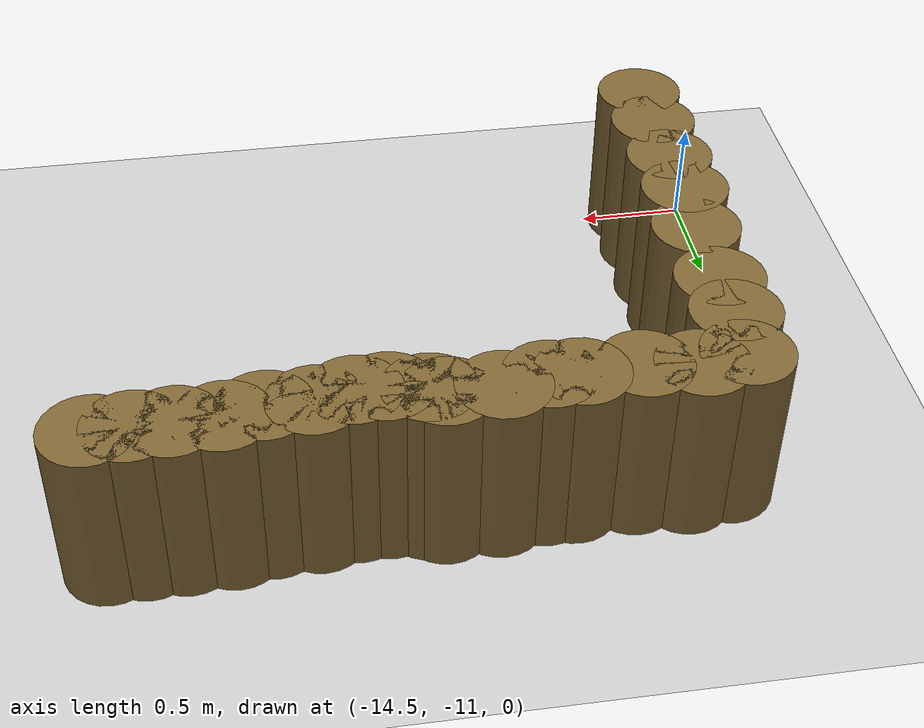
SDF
<sdf version="1.7">
 <world name="default">
  <model name="ground_plane">
   <static>1</static>
   <link name="link">
    <collision name="collision">
     <geometry><plane><normal>0 0 1</normal><size>100 100</size></plane></geometry>
     <surface><friction><ode><mu>100</mu><mu2>50</mu2></ode></friction></surface>
    </collision>
    <visual name="visual">
     <cast_shadows>0</cast_shadows>
     <geometry><plane><normal>0 0 1</normal><size>100 100</size></plane></geometry>
     <material>
      <script><uri>file://media/materials/scripts/gazebo.material</uri><name>Gazebo/Grey</name></script>
     </material>
    </visual>
   </link>
  </model>
  <model name="mini_cylinder_0_clone_0_clone_clone_clone_clone_3_clone_20_clone_138">
   <link name="link">
    <inertial>
     <mass>1</mass>
     <inertia><ixx>0.145833</ixx><ixy>0</ixy><ixz>0</ixz><iyy>0.145833</iyy><iyz>0</iyz><izz>0.125</izz></inertia>
    </inertial>
    <visual name="visual">
     <geometry><cylinder><radius>0.2</radius><length>0.8</length></cylinder></geometry>
     <material>
      <script><name>Gazebo/Grey</name><uri>file://media/materials/scripts/gazebo.material</uri></script>
      <shader type="vertex"><normal_map>__default__</normal_map></shader>
      <ambient>0.5 0.4 0.2 1</ambient>
      <diffuse>0.7 0.7 0.7 1</diffuse>
      <specular>0.01 0.01 0.01 1</specular>
      <emissive>0 0 0 1</emissive>
     </material>
    </visual>
    <collision name="collision">
     <geometry><cylinder><radius>0.2</radius><length>0.8</length></cylinder></geometry>
     <surface>
      <friction>
       <ode><mu>1</mu><mu2>1</mu2><fdir1>0 0 0</fdir1><slip1>0</slip1><slip2>0</slip2></ode>
       <torsional>
        <coefficient>1</coefficient>
        <patch_radius>0</patch_radius>
        <surface_radius>0</surface_radius>
        <use_patch_radius>1</use_patch_radius>
        <ode><slip>0</slip></ode>
       </torsional>
      </friction>
      <bounce><restitution_coefficient>0</restitution_coefficient><threshold>1e+06</threshold></bounce>
      <contact>
       <collide_without_contact>0</collide_without_contact>
       <collide_without_contact_bitmask>1</collide_without_contact_bitmask>
       <collide_bitmask>1</collide_bitmask>
       <ode>
        <soft_cfm>0</soft_cfm>
        <soft_erp>0.2</soft_erp>
        <kp>1e+13</kp>
        <kd>1</kd>
        <max_vel>0.01</max_vel>
        <min_depth>0</min_depth>
       </ode>
       <bullet>
        <split_impulse>1</split_impulse>
        <split_impulse_penetration_threshold>-0.01</split_impulse_penetration_threshold>
        <soft_cfm>0</soft_cfm>
        <soft_erp>0.2</soft_erp>
        <kp>1e+13</kp>
        <kd>1</kd>
       </bullet>
      </contact>
     </surface>
    </collision>
   </link>
   <static>1</static>
   <pose>-11.5602 -8.94384 0.4 0 -0 0</pose>
  </model>
  <model name="mini_cylinder_0_clone_0_clone_clone_clone_clone_3_clone_20_clone_139">
   <link name="link">
    <inertial>
     <mass>1</mass>
     <inertia><ixx>0.145833</ixx><ixy>0</ixy><ixz>0</ixz><iyy>0.145833</iyy><iyz>0</iyz><izz>0.125</izz></inertia>
    </inertial>
    <visual name="visual">
     <geometry><cylinder><radius>0.2</radius><length>0.8</length></cylinder></geometry>
     <material>
      <script><name>Gazebo/Grey</name><uri>file://media/materials/scripts/gazebo.material</uri></script>
      <shader type="vertex"><normal_map>__default__</normal_map></shader>
      <ambient>0.5 0.4 0.2 1</ambient>
      <diffuse>0.7 0.7 0.7 1</diffuse>
      <specular>0.01 0.01 0.01 1</specular>
      <emissive>0 0 0 1</emissive>
     </material>
    </visual>
    <collision name="collision">
     <geometry><cylinder><radius>0.2</radius><length>0.8</length></cylinder></geometry>
     <surface>
      <friction>
       <ode><mu>1</mu><mu2>1</mu2><fdir1>0 0 0</fdir1><slip1>0</slip1><slip2>0</slip2></ode>
       <torsional>
        <coefficient>1</coefficient>
        <patch_radius>0</patch_radius>
        <surface_radius>0</surface_radius>
        <use_patch_radius>1</use_patch_radius>
        <ode><slip>0</slip></ode>
       </torsional>
      </friction>
      <bounce><restitution_coefficient>0</restitution_coefficient><threshold>1e+06</threshold></bounce>
      <contact>
       <collide_without_contact>0</collide_without_contact>
       <collide_without_contact_bitmask>1</collide_without_contact_bitmask>
       <collide_bitmask>1</collide_bitmask>
       <ode>
        <soft_cfm>0</soft_cfm>
        <soft_erp>0.2</soft_erp>
        <kp>1e+13</kp>
        <kd>1</kd>
        <max_vel>0.01</max_vel>
        <min_depth>0</min_depth>
       </ode>
       <bullet>
        <split_impulse>1</split_impulse>
        <split_impulse_penetration_threshold>-0.01</split_impulse_penetration_threshold>
        <soft_cfm>0</soft_cfm>
        <soft_erp>0.2</soft_erp>
        <kp>1e+13</kp>
        <kd>1</kd>
       </bullet>
      </contact>
     </surface>
    </collision>
   </link>
   <static>1</static>
   <pose>-11.7227 -8.9465 0.4 0 -0 0</pose>
  </model>
  <model name="mini_cylinder_0_clone_0_clone_clone_clone_clone_3_clone_20_clone_140">
   <link name="link">
    <inertial>
     <mass>1</mass>
     <inertia><ixx>0.145833</ixx><ixy>0</ixy><ixz>0</ixz><iyy>0.145833</iyy><iyz>0</iyz><izz>0.125</izz></inertia>
    </inertial>
    <visual name="visual">
     <geometry><cylinder><radius>0.2</radius><length>0.8</length></cylinder></geometry>
     <material>
      <script><name>Gazebo/Grey</name><uri>file://media/materials/scripts/gazebo.material</uri></script>
      <shader type="vertex"><normal_map>__default__</normal_map></shader>
      <ambient>0.5 0.4 0.2 1</ambient>
      <diffuse>0.7 0.7 0.7 1</diffuse>
      <specular>0.01 0.01 0.01 1</specular>
      <emissive>0 0 0 1</emissive>
     </material>
    </visual>
    <collision name="collision">
     <geometry><cylinder><radius>0.2</radius><length>0.8</length></cylinder></geometry>
     <surface>
      <friction>
       <ode><mu>1</mu><mu2>1</mu2><fdir1>0 0 0</fdir1><slip1>0</slip1><slip2>0</slip2></ode>
       <torsional>
        <coefficient>1</coefficient>
        <patch_radius>0</patch_radius>
        <surface_radius>0</surface_radius>
        <use_patch_radius>1</use_patch_radius>
        <ode><slip>0</slip></ode>
       </torsional>
      </friction>
      <bounce><restitution_coefficient>0</restitution_coefficient><threshold>1e+06</threshold></bounce>
      <contact>
       <collide_without_contact>0</collide_without_contact>
       <collide_without_contact_bitmask>1</collide_without_contact_bitmask>
       <collide_bitmask>1</collide_bitmask>
       <ode>
        <soft_cfm>0</soft_cfm>
        <soft_erp>0.2</soft_erp>
        <kp>1e+13</kp>
        <kd>1</kd>
        <max_vel>0.01</max_vel>
        <min_depth>0</min_depth>
       </ode>
       <bullet>
        <split_impulse>1</split_impulse>
        <split_impulse_penetration_threshold>-0.01</split_impulse_penetration_threshold>
        <soft_cfm>0</soft_cfm>
        <soft_erp>0.2</soft_erp>
        <kp>1e+13</kp>
        <kd>1</kd>
       </bullet>
      </contact>
     </surface>
    </collision>
   </link>
   <static>1</static>
   <pose>-11.8853 -8.94828 0.4 0 -0 0</pose>
  </model>
  <model name="mini_cylinder_0_clone_0_clone_clone_clone_clone_3_clone_20_clone_141">
   <link name="link">
    <inertial>
     <mass>1</mass>
     <inertia><ixx>0.145833</ixx><ixy>0</ixy><ixz>0</ixz><iyy>0.145833</iyy><iyz>0</iyz><izz>0.125</izz></inertia>
    </inertial>
    <visual name="visual">
     <geometry><cylinder><radius>0.2</radius><length>0.8</length></cylinder></geometry>
     <material>
      <script><name>Gazebo/Grey</name><uri>file://media/materials/scripts/gazebo.material</uri></script>
      <shader type="vertex"><normal_map>__default__</normal_map></shader>
      <ambient>0.5 0.4 0.2 1</ambient>
      <diffuse>0.7 0.7 0.7 1</diffuse>
      <specular>0.01 0.01 0.01 1</specular>
      <emissive>0 0 0 1</emissive>
     </material>
    </visual>
    <collision name="collision">
     <geometry><cylinder><radius>0.2</radius><length>0.8</length></cylinder></geometry>
     <surface>
      <friction>
       <ode><mu>1</mu><mu2>1</mu2><fdir1>0 0 0</fdir1><slip1>0</slip1><slip2>0</slip2></ode>
       <torsional>
        <coefficient>1</coefficient>
        <patch_radius>0</patch_radius>
        <surface_radius>0</surface_radius>
        <use_patch_radius>1</use_patch_radius>
        <ode><slip>0</slip></ode>
       </torsional>
      </friction>
      <bounce><restitution_coefficient>0</restitution_coefficient><threshold>1e+06</threshold></bounce>
      <contact>
       <collide_without_contact>0</collide_without_contact>
       <collide_without_contact_bitmask>1</collide_without_contact_bitmask>
       <collide_bitmask>1</collide_bitmask>
       <ode>
        <soft_cfm>0</soft_cfm>
        <soft_erp>0.2</soft_erp>
        <kp>1e+13</kp>
        <kd>1</kd>
        <max_vel>0.01</max_vel>
        <min_depth>0</min_depth>
       </ode>
       <bullet>
        <split_impulse>1</split_impulse>
        <split_impulse_penetration_threshold>-0.01</split_impulse_penetration_threshold>
        <soft_cfm>0</soft_cfm>
        <soft_erp>0.2</soft_erp>
        <kp>1e+13</kp>
        <kd>1</kd>
       </bullet>
      </contact>
     </surface>
    </collision>
   </link>
   <static>1</static>
   <pose>-12.0801 -8.95148 0.4 0 -0 0</pose>
  </model>
  <model name="mini_cylinder_0_clone_0_clone_clone_clone_clone_3_clone_20_clone_142">
   <link name="link">
    <inertial>
     <mass>1</mass>
     <inertia><ixx>0.145833</ixx><ixy>0</ixy><ixz>0</ixz><iyy>0.145833</iyy><iyz>0</iyz><izz>0.125</izz></inertia>
    </inertial>
    <visual name="visual">
     <geometry><cylinder><radius>0.2</radius><length>0.8</length></cylinder></geometry>
     <material>
      <script><name>Gazebo/Grey</name><uri>file://media/materials/scripts/gazebo.material</uri></script>
      <shader type="vertex"><normal_map>__default__</normal_map></shader>
      <ambient>0.5 0.4 0.2 1</ambient>
      <diffuse>0.7 0.7 0.7 1</diffuse>
      <specular>0.01 0.01 0.01 1</specular>
      <emissive>0 0 0 1</emissive>
     </material>
    </visual>
    <collision name="collision">
     <geometry><cylinder><radius>0.2</radius><length>0.8</length></cylinder></geometry>
     <surface>
      <friction>
       <ode><mu>1</mu><mu2>1</mu2><fdir1>0 0 0</fdir1><slip1>0</slip1><slip2>0</slip2></ode>
       <torsional>
        <coefficient>1</coefficient>
        <patch_radius>0</patch_radius>
        <surface_radius>0</surface_radius>
        <use_patch_radius>1</use_patch_radius>
        <ode><slip>0</slip></ode>
       </torsional>
      </friction>
      <bounce><restitution_coefficient>0</restitution_coefficient><threshold>1e+06</threshold></bounce>
      <contact>
       <collide_without_contact>0</collide_without_contact>
       <collide_without_contact_bitmask>1</collide_without_contact_bitmask>
       <collide_bitmask>1</collide_bitmask>
       <ode>
        <soft_cfm>0</soft_cfm>
        <soft_erp>0.2</soft_erp>
        <kp>1e+13</kp>
        <kd>1</kd>
        <max_vel>0.01</max_vel>
        <min_depth>0</min_depth>
       </ode>
       <bullet>
        <split_impulse>1</split_impulse>
        <split_impulse_penetration_threshold>-0.01</split_impulse_penetration_threshold>
        <soft_cfm>0</soft_cfm>
        <soft_erp>0.2</soft_erp>
        <kp>1e+13</kp>
        <kd>1</kd>
       </bullet>
      </contact>
     </surface>
    </collision>
   </link>
   <static>1</static>
   <pose>-12.2414 -8.98664 0.4 0 -0 0</pose>
  </model>
  <model name="mini_cylinder_0_clone_0_clone_clone_clone_clone_3_clone_20_clone_143">
   <link name="link">
    <inertial>
     <mass>1</mass>
     <inertia><ixx>0.145833</ixx><ixy>0</ixy><ixz>0</ixz><iyy>0.145833</iyy><iyz>0</iyz><izz>0.125</izz></inertia>
    </inertial>
    <visual name="visual">
     <geometry><cylinder><radius>0.2</radius><length>0.8</length></cylinder></geometry>
     <material>
      <script><name>Gazebo/Grey</name><uri>file://media/materials/scripts/gazebo.material</uri></script>
      <shader type="vertex"><normal_map>__default__</normal_map></shader>
      <ambient>0.5 0.4 0.2 1</ambient>
      <diffuse>0.7 0.7 0.7 1</diffuse>
      <specular>0.01 0.01 0.01 1</specular>
      <emissive>0 0 0 1</emissive>
     </material>
    </visual>
    <collision name="collision">
     <geometry><cylinder><radius>0.2</radius><length>0.8</length></cylinder></geometry>
     <surface>
      <friction>
       <ode><mu>1</mu><mu2>1</mu2><fdir1>0 0 0</fdir1><slip1>0</slip1><slip2>0</slip2></ode>
       <torsional>
        <coefficient>1</coefficient>
        <patch_radius>0</patch_radius>
        <surface_radius>0</surface_radius>
        <use_patch_radius>1</use_patch_radius>
        <ode><slip>0</slip></ode>
       </torsional>
      </friction>
      <bounce><restitution_coefficient>0</restitution_coefficient><threshold>1e+06</threshold></bounce>
      <contact>
       <collide_without_contact>0</collide_without_contact>
       <collide_without_contact_bitmask>1</collide_without_contact_bitmask>
       <collide_bitmask>1</collide_bitmask>
       <ode>
        <soft_cfm>0</soft_cfm>
        <soft_erp>0.2</soft_erp>
        <kp>1e+13</kp>
        <kd>1</kd>
        <max_vel>0.01</max_vel>
        <min_depth>0</min_depth>
       </ode>
       <bullet>
        <split_impulse>1</split_impulse>
        <split_impulse_penetration_threshold>-0.01</split_impulse_penetration_threshold>
        <soft_cfm>0</soft_cfm>
        <soft_erp>0.2</soft_erp>
        <kp>1e+13</kp>
        <kd>1</kd>
       </bullet>
      </contact>
     </surface>
    </collision>
   </link>
   <static>1</static>
   <pose>-12.4361 -8.98979 0.4 0 -0 0</pose>
  </model>
  <model name="mini_cylinder_0_clone_0_clone_clone_clone_clone_3_clone_20_clone_144">
   <link name="link">
    <inertial>
     <mass>1</mass>
     <inertia><ixx>0.145833</ixx><ixy>0</ixy><ixz>0</ixz><iyy>0.145833</iyy><iyz>0</iyz><izz>0.125</izz></inertia>
    </inertial>
    <visual name="visual">
     <geometry><cylinder><radius>0.2</radius><length>0.8</length></cylinder></geometry>
     <material>
      <script><name>Gazebo/Grey</name><uri>file://media/materials/scripts/gazebo.material</uri></script>
      <shader type="vertex"><normal_map>__default__</normal_map></shader>
      <ambient>0.5 0.4 0.2 1</ambient>
      <diffuse>0.7 0.7 0.7 1</diffuse>
      <specular>0.01 0.01 0.01 1</specular>
      <emissive>0 0 0 1</emissive>
     </material>
    </visual>
    <collision name="collision">
     <geometry><cylinder><radius>0.2</radius><length>0.8</length></cylinder></geometry>
     <surface>
      <friction>
       <ode><mu>1</mu><mu2>1</mu2><fdir1>0 0 0</fdir1><slip1>0</slip1><slip2>0</slip2></ode>
       <torsional>
        <coefficient>1</coefficient>
        <patch_radius>0</patch_radius>
        <surface_radius>0</surface_radius>
        <use_patch_radius>1</use_patch_radius>
        <ode><slip>0</slip></ode>
       </torsional>
      </friction>
      <bounce><restitution_coefficient>0</restitution_coefficient><threshold>1e+06</threshold></bounce>
      <contact>
       <collide_without_contact>0</collide_without_contact>
       <collide_without_contact_bitmask>1</collide_without_contact_bitmask>
       <collide_bitmask>1</collide_bitmask>
       <ode>
        <soft_cfm>0</soft_cfm>
        <soft_erp>0.2</soft_erp>
        <kp>1e+13</kp>
        <kd>1</kd>
        <max_vel>0.01</max_vel>
        <min_depth>0</min_depth>
       </ode>
       <bullet>
        <split_impulse>1</split_impulse>
        <split_impulse_penetration_threshold>-0.01</split_impulse_penetration_threshold>
        <soft_cfm>0</soft_cfm>
        <soft_erp>0.2</soft_erp>
        <kp>1e+13</kp>
        <kd>1</kd>
       </bullet>
      </contact>
     </surface>
    </collision>
   </link>
   <static>1</static>
   <pose>-12.5977 -9.02465 0.4 0 -0 0</pose>
  </model>
  <model name="mini_cylinder_0_clone_0_clone_clone_clone_clone_3_clone_20_clone_145">
   <link name="link">
    <inertial>
     <mass>1</mass>
     <inertia><ixx>0.145833</ixx><ixy>0</ixy><ixz>0</ixz><iyy>0.145833</iyy><iyz>0</iyz><izz>0.125</izz></inertia>
    </inertial>
    <visual name="visual">
     <geometry><cylinder><radius>0.2</radius><length>0.8</length></cylinder></geometry>
     <material>
      <script><name>Gazebo/Grey</name><uri>file://media/materials/scripts/gazebo.material</uri></script>
      <shader type="vertex"><normal_map>__default__</normal_map></shader>
      <ambient>0.5 0.4 0.2 1</ambient>
      <diffuse>0.7 0.7 0.7 1</diffuse>
      <specular>0.01 0.01 0.01 1</specular>
      <emissive>0 0 0 1</emissive>
     </material>
    </visual>
    <collision name="collision">
     <geometry><cylinder><radius>0.2</radius><length>0.8</length></cylinder></geometry>
     <surface>
      <friction>
       <ode><mu>1</mu><mu2>1</mu2><fdir1>0 0 0</fdir1><slip1>0</slip1><slip2>0</slip2></ode>
       <torsional>
        <coefficient>1</coefficient>
        <patch_radius>0</patch_radius>
        <surface_radius>0</surface_radius>
        <use_patch_radius>1</use_patch_radius>
        <ode><slip>0</slip></ode>
       </torsional>
      </friction>
      <bounce><restitution_coefficient>0</restitution_coefficient><threshold>1e+06</threshold></bounce>
      <contact>
       <collide_without_contact>0</collide_without_contact>
       <collide_without_contact_bitmask>1</collide_without_contact_bitmask>
       <collide_bitmask>1</collide_bitmask>
       <ode>
        <soft_cfm>0</soft_cfm>
        <soft_erp>0.2</soft_erp>
        <kp>1e+13</kp>
        <kd>1</kd>
        <max_vel>0.01</max_vel>
        <min_depth>0</min_depth>
       </ode>
       <bullet>
        <split_impulse>1</split_impulse>
        <split_impulse_penetration_threshold>-0.01</split_impulse_penetration_threshold>
        <soft_cfm>0</soft_cfm>
        <soft_erp>0.2</soft_erp>
        <kp>1e+13</kp>
        <kd>1</kd>
       </bullet>
      </contact>
     </surface>
    </collision>
   </link>
   <static>1</static>
   <pose>-12.7285 -9.02677 0.4 0 -0 0</pose>
  </model>
  <model name="mini_cylinder_0_clone_0_clone_clone_clone_clone_3_clone_20_clone_146">
   <link name="link">
    <inertial>
     <mass>1</mass>
     <inertia><ixx>0.145833</ixx><ixy>0</ixy><ixz>0</ixz><iyy>0.145833</iyy><iyz>0</iyz><izz>0.125</izz></inertia>
    </inertial>
    <visual name="visual">
     <geometry><cylinder><radius>0.2</radius><length>0.8</length></cylinder></geometry>
     <material>
      <script><name>Gazebo/Grey</name><uri>file://media/materials/scripts/gazebo.material</uri></script>
      <shader type="vertex"><normal_map>__default__</normal_map></shader>
      <ambient>0.5 0.4 0.2 1</ambient>
      <diffuse>0.7 0.7 0.7 1</diffuse>
      <specular>0.01 0.01 0.01 1</specular>
      <emissive>0 0 0 1</emissive>
     </material>
    </visual>
    <collision name="collision">
     <geometry><cylinder><radius>0.2</radius><length>0.8</length></cylinder></geometry>
     <surface>
      <friction>
       <ode><mu>1</mu><mu2>1</mu2><fdir1>0 0 0</fdir1><slip1>0</slip1><slip2>0</slip2></ode>
       <torsional>
        <coefficient>1</coefficient>
        <patch_radius>0</patch_radius>
        <surface_radius>0</surface_radius>
        <use_patch_radius>1</use_patch_radius>
        <ode><slip>0</slip></ode>
       </torsional>
      </friction>
      <bounce><restitution_coefficient>0</restitution_coefficient><threshold>1e+06</threshold></bounce>
      <contact>
       <collide_without_contact>0</collide_without_contact>
       <collide_without_contact_bitmask>1</collide_without_contact_bitmask>
       <collide_bitmask>1</collide_bitmask>
       <ode>
        <soft_cfm>0</soft_cfm>
        <soft_erp>0.2</soft_erp>
        <kp>1e+13</kp>
        <kd>1</kd>
        <max_vel>0.01</max_vel>
        <min_depth>0</min_depth>
       </ode>
       <bullet>
        <split_impulse>1</split_impulse>
        <split_impulse_penetration_threshold>-0.01</split_impulse_penetration_threshold>
        <soft_cfm>0</soft_cfm>
        <soft_erp>0.2</soft_erp>
        <kp>1e+13</kp>
        <kd>1</kd>
       </bullet>
      </contact>
     </surface>
    </collision>
   </link>
   <static>1</static>
   <pose>-12.891 -8.99663 0.4 0 -0 0</pose>
  </model>
  <model name="mini_cylinder_0_clone_0_clone_clone_clone_clone_3_clone_20_clone_147">
   <link name="link">
    <inertial>
     <mass>1</mass>
     <inertia><ixx>0.145833</ixx><ixy>0</ixy><ixz>0</ixz><iyy>0.145833</iyy><iyz>0</iyz><izz>0.125</izz></inertia>
    </inertial>
    <visual name="visual">
     <geometry><cylinder><radius>0.2</radius><length>0.8</length></cylinder></geometry>
     <material>
      <script><name>Gazebo/Grey</name><uri>file://media/materials/scripts/gazebo.material</uri></script>
      <shader type="vertex"><normal_map>__default__</normal_map></shader>
      <ambient>0.5 0.4 0.2 1</ambient>
      <diffuse>0.7 0.7 0.7 1</diffuse>
      <specular>0.01 0.01 0.01 1</specular>
      <emissive>0 0 0 1</emissive>
     </material>
    </visual>
    <collision name="collision">
     <geometry><cylinder><radius>0.2</radius><length>0.8</length></cylinder></geometry>
     <surface>
      <friction>
       <ode><mu>1</mu><mu2>1</mu2><fdir1>0 0 0</fdir1><slip1>0</slip1><slip2>0</slip2></ode>
       <torsional>
        <coefficient>1</coefficient>
        <patch_radius>0</patch_radius>
        <surface_radius>0</surface_radius>
        <use_patch_radius>1</use_patch_radius>
        <ode><slip>0</slip></ode>
       </torsional>
      </friction>
      <bounce><restitution_coefficient>0</restitution_coefficient><threshold>1e+06</threshold></bounce>
      <contact>
       <collide_without_contact>0</collide_without_contact>
       <collide_without_contact_bitmask>1</collide_without_contact_bitmask>
       <collide_bitmask>1</collide_bitmask>
       <ode>
        <soft_cfm>0</soft_cfm>
        <soft_erp>0.2</soft_erp>
        <kp>1e+13</kp>
        <kd>1</kd>
        <max_vel>0.01</max_vel>
        <min_depth>0</min_depth>
       </ode>
       <bullet>
        <split_impulse>1</split_impulse>
        <split_impulse_penetration_threshold>-0.01</split_impulse_penetration_threshold>
        <soft_cfm>0</soft_cfm>
        <soft_erp>0.2</soft_erp>
        <kp>1e+13</kp>
        <kd>1</kd>
       </bullet>
      </contact>
     </surface>
    </collision>
   </link>
   <static>1</static>
   <pose>-13.1835 -8.96915 0.4 0 -0 0</pose>
  </model>
  <model name="mini_cylinder_0_clone_0_clone_clone_clone_clone_3_clone_20_clone_148">
   <link name="link">
    <inertial>
     <mass>1</mass>
     <inertia><ixx>0.145833</ixx><ixy>0</ixy><ixz>0</ixz><iyy>0.145833</iyy><iyz>0</iyz><izz>0.125</izz></inertia>
    </inertial>
    <visual name="visual">
     <geometry><cylinder><radius>0.2</radius><length>0.8</length></cylinder></geometry>
     <material>
      <script><name>Gazebo/Grey</name><uri>file://media/materials/scripts/gazebo.material</uri></script>
      <shader type="vertex"><normal_map>__default__</normal_map></shader>
      <ambient>0.5 0.4 0.2 1</ambient>
      <diffuse>0.7 0.7 0.7 1</diffuse>
      <specular>0.01 0.01 0.01 1</specular>
      <emissive>0 0 0 1</emissive>
     </material>
    </visual>
    <collision name="collision">
     <geometry><cylinder><radius>0.2</radius><length>0.8</length></cylinder></geometry>
     <surface>
      <friction>
       <ode><mu>1</mu><mu2>1</mu2><fdir1>0 0 0</fdir1><slip1>0</slip1><slip2>0</slip2></ode>
       <torsional>
        <coefficient>1</coefficient>
        <patch_radius>0</patch_radius>
        <surface_radius>0</surface_radius>
        <use_patch_radius>1</use_patch_radius>
        <ode><slip>0</slip></ode>
       </torsional>
      </friction>
      <bounce><restitution_coefficient>0</restitution_coefficient><threshold>1e+06</threshold></bounce>
      <contact>
       <collide_without_contact>0</collide_without_contact>
       <collide_without_contact_bitmask>1</collide_without_contact_bitmask>
       <collide_bitmask>1</collide_bitmask>
       <ode>
        <soft_cfm>0</soft_cfm>
        <soft_erp>0.2</soft_erp>
        <kp>1e+13</kp>
        <kd>1</kd>
        <max_vel>0.01</max_vel>
        <min_depth>0</min_depth>
       </ode>
       <bullet>
        <split_impulse>1</split_impulse>
        <split_impulse_penetration_threshold>-0.01</split_impulse_penetration_threshold>
        <soft_cfm>0</soft_cfm>
        <soft_erp>0.2</soft_erp>
        <kp>1e+13</kp>
        <kd>1</kd>
       </bullet>
      </contact>
     </surface>
    </collision>
   </link>
   <static>1</static>
   <pose>-13.3777 -9.00397 0.4 0 -0 0</pose>
  </model>
  <model name="mini_cylinder_0_clone_0_clone_clone_clone_clone_3_clone_20_clone_149">
   <link name="link">
    <inertial>
     <mass>1</mass>
     <inertia><ixx>0.145833</ixx><ixy>0</ixy><ixz>0</ixz><iyy>0.145833</iyy><iyz>0</iyz><izz>0.125</izz></inertia>
    </inertial>
    <visual name="visual">
     <geometry><cylinder><radius>0.2</radius><length>0.8</length></cylinder></geometry>
     <material>
      <script><name>Gazebo/Grey</name><uri>file://media/materials/scripts/gazebo.material</uri></script>
      <shader type="vertex"><normal_map>__default__</normal_map></shader>
      <ambient>0.5 0.4 0.2 1</ambient>
      <diffuse>0.7 0.7 0.7 1</diffuse>
      <specular>0.01 0.01 0.01 1</specular>
      <emissive>0 0 0 1</emissive>
     </material>
    </visual>
    <collision name="collision">
     <geometry><cylinder><radius>0.2</radius><length>0.8</length></cylinder></geometry>
     <surface>
      <friction>
       <ode><mu>1</mu><mu2>1</mu2><fdir1>0 0 0</fdir1><slip1>0</slip1><slip2>0</slip2></ode>
       <torsional>
        <coefficient>1</coefficient>
        <patch_radius>0</patch_radius>
        <surface_radius>0</surface_radius>
        <use_patch_radius>1</use_patch_radius>
        <ode><slip>0</slip></ode>
       </torsional>
      </friction>
      <bounce><restitution_coefficient>0</restitution_coefficient><threshold>1e+06</threshold></bounce>
      <contact>
       <collide_without_contact>0</collide_without_contact>
       <collide_without_contact_bitmask>1</collide_without_contact_bitmask>
       <collide_bitmask>1</collide_bitmask>
       <ode>
        <soft_cfm>0</soft_cfm>
        <soft_erp>0.2</soft_erp>
        <kp>1e+13</kp>
        <kd>1</kd>
        <max_vel>0.01</max_vel>
        <min_depth>0</min_depth>
       </ode>
       <bullet>
        <split_impulse>1</split_impulse>
        <split_impulse_penetration_threshold>-0.01</split_impulse_penetration_threshold>
        <soft_cfm>0</soft_cfm>
        <soft_erp>0.2</soft_erp>
        <kp>1e+13</kp>
        <kd>1</kd>
       </bullet>
      </contact>
     </surface>
    </collision>
   </link>
   <static>1</static>
   <pose>-12.956 -8.96531 0.4 0 -0 0</pose>
  </model>
  <model name="mini_cylinder_0_clone_0_clone_clone_clone_clone_3_clone_20_clone_150">
   <link name="link">
    <inertial>
     <mass>1</mass>
     <inertia><ixx>0.145833</ixx><ixy>0</ixy><ixz>0</ixz><iyy>0.145833</iyy><iyz>0</iyz><izz>0.125</izz></inertia>
    </inertial>
    <visual name="visual">
     <geometry><cylinder><radius>0.2</radius><length>0.8</length></cylinder></geometry>
     <material>
      <script><name>Gazebo/Grey</name><uri>file://media/materials/scripts/gazebo.material</uri></script>
      <shader type="vertex"><normal_map>__default__</normal_map></shader>
      <ambient>0.5 0.4 0.2 1</ambient>
      <diffuse>0.7 0.7 0.7 1</diffuse>
      <specular>0.01 0.01 0.01 1</specular>
      <emissive>0 0 0 1</emissive>
     </material>
    </visual>
    <collision name="collision">
     <geometry><cylinder><radius>0.2</radius><length>0.8</length></cylinder></geometry>
     <surface>
      <friction>
       <ode><mu>1</mu><mu2>1</mu2><fdir1>0 0 0</fdir1><slip1>0</slip1><slip2>0</slip2></ode>
       <torsional>
        <coefficient>1</coefficient>
        <patch_radius>0</patch_radius>
        <surface_radius>0</surface_radius>
        <use_patch_radius>1</use_patch_radius>
        <ode><slip>0</slip></ode>
       </torsional>
      </friction>
      <bounce><restitution_coefficient>0</restitution_coefficient><threshold>1e+06</threshold></bounce>
      <contact>
       <collide_without_contact>0</collide_without_contact>
       <collide_without_contact_bitmask>1</collide_without_contact_bitmask>
       <collide_bitmask>1</collide_bitmask>
       <ode>
        <soft_cfm>0</soft_cfm>
        <soft_erp>0.2</soft_erp>
        <kp>1e+13</kp>
        <kd>1</kd>
        <max_vel>0.01</max_vel>
        <min_depth>0</min_depth>
       </ode>
       <bullet>
        <split_impulse>1</split_impulse>
        <split_impulse_penetration_threshold>-0.01</split_impulse_penetration_threshold>
        <soft_cfm>0</soft_cfm>
        <soft_erp>0.2</soft_erp>
        <kp>1e+13</kp>
        <kd>1</kd>
       </bullet>
      </contact>
     </surface>
    </collision>
   </link>
   <static>1</static>
   <pose>-13.5071 -9 0.4 0 -0 0</pose>
  </model>
  <model name="mini_cylinder_0_clone_0_clone_clone_clone_clone_3_clone_20_clone_151">
   <link name="link">
    <inertial>
     <mass>1</mass>
     <inertia><ixx>0.145833</ixx><ixy>0</ixy><ixz>0</ixz><iyy>0.145833</iyy><iyz>0</iyz><izz>0.125</izz></inertia>
    </inertial>
    <visual name="visual">
     <geometry><cylinder><radius>0.2</radius><length>0.8</length></cylinder></geometry>
     <material>
      <script><name>Gazebo/Grey</name><uri>file://media/materials/scripts/gazebo.material</uri></script>
      <shader type="vertex"><normal_map>__default__</normal_map></shader>
      <ambient>0.5 0.4 0.2 1</ambient>
      <diffuse>0.7 0.7 0.7 1</diffuse>
      <specular>0.01 0.01 0.01 1</specular>
      <emissive>0 0 0 1</emissive>
     </material>
    </visual>
    <collision name="collision">
     <geometry><cylinder><radius>0.2</radius><length>0.8</length></cylinder></geometry>
     <surface>
      <friction>
       <ode><mu>1</mu><mu2>1</mu2><fdir1>0 0 0</fdir1><slip1>0</slip1><slip2>0</slip2></ode>
       <torsional>
        <coefficient>1</coefficient>
        <patch_radius>0</patch_radius>
        <surface_radius>0</surface_radius>
        <use_patch_radius>1</use_patch_radius>
        <ode><slip>0</slip></ode>
       </torsional>
      </friction>
      <bounce><restitution_coefficient>0</restitution_coefficient><threshold>1e+06</threshold></bounce>
      <contact>
       <collide_without_contact>0</collide_without_contact>
       <collide_without_contact_bitmask>1</collide_without_contact_bitmask>
       <collide_bitmask>1</collide_bitmask>
       <ode>
        <soft_cfm>0</soft_cfm>
        <soft_erp>0.2</soft_erp>
        <kp>1e+13</kp>
        <kd>1</kd>
        <max_vel>0.01</max_vel>
        <min_depth>0</min_depth>
       </ode>
       <bullet>
        <split_impulse>1</split_impulse>
        <split_impulse_penetration_threshold>-0.01</split_impulse_penetration_threshold>
        <soft_cfm>0</soft_cfm>
        <soft_erp>0.2</soft_erp>
        <kp>1e+13</kp>
        <kd>1</kd>
       </bullet>
      </contact>
     </surface>
    </collision>
   </link>
   <static>1</static>
   <pose>-13.7666 -9.01036 0.4 0 -0 0</pose>
  </model>
  <model name="mini_cylinder_0_clone_0_clone_clone_clone_clone_3_clone_20_clone_152">
   <link name="link">
    <inertial>
     <mass>1</mass>
     <inertia><ixx>0.145833</ixx><ixy>0</ixy><ixz>0</ixz><iyy>0.145833</iyy><iyz>0</iyz><izz>0.125</izz></inertia>
    </inertial>
    <visual name="visual">
     <geometry><cylinder><radius>0.2</radius><length>0.8</length></cylinder></geometry>
     <material>
      <script><name>Gazebo/Grey</name><uri>file://media/materials/scripts/gazebo.material</uri></script>
      <shader type="vertex"><normal_map>__default__</normal_map></shader>
      <ambient>0.5 0.4 0.2 1</ambient>
      <diffuse>0.7 0.7 0.7 1</diffuse>
      <specular>0.01 0.01 0.01 1</specular>
      <emissive>0 0 0 1</emissive>
     </material>
    </visual>
    <collision name="collision">
     <geometry><cylinder><radius>0.2</radius><length>0.8</length></cylinder></geometry>
     <surface>
      <friction>
       <ode><mu>1</mu><mu2>1</mu2><fdir1>0 0 0</fdir1><slip1>0</slip1><slip2>0</slip2></ode>
       <torsional>
        <coefficient>1</coefficient>
        <patch_radius>0</patch_radius>
        <surface_radius>0</surface_radius>
        <use_patch_radius>1</use_patch_radius>
        <ode><slip>0</slip></ode>
       </torsional>
      </friction>
      <bounce><restitution_coefficient>0</restitution_coefficient><threshold>1e+06</threshold></bounce>
      <contact>
       <collide_without_contact>0</collide_without_contact>
       <collide_without_contact_bitmask>1</collide_without_contact_bitmask>
       <collide_bitmask>1</collide_bitmask>
       <ode>
        <soft_cfm>0</soft_cfm>
        <soft_erp>0.2</soft_erp>
        <kp>1e+13</kp>
        <kd>1</kd>
        <max_vel>0.01</max_vel>
        <min_depth>0</min_depth>
       </ode>
       <bullet>
        <split_impulse>1</split_impulse>
        <split_impulse_penetration_threshold>-0.01</split_impulse_penetration_threshold>
        <soft_cfm>0</soft_cfm>
        <soft_erp>0.2</soft_erp>
        <kp>1e+13</kp>
        <kd>1</kd>
       </bullet>
      </contact>
     </surface>
    </collision>
   </link>
   <static>1</static>
   <pose>-13.9944 -8.98141 0.4 0 -0 0</pose>
  </model>
  <model name="mini_cylinder_0_clone_0_clone_clone_clone_clone_3_clone_20_clone_153">
   <link name="link">
    <inertial>
     <mass>1</mass>
     <inertia><ixx>0.145833</ixx><ixy>0</ixy><ixz>0</ixz><iyy>0.145833</iyy><iyz>0</iyz><izz>0.125</izz></inertia>
    </inertial>
    <visual name="visual">
     <geometry><cylinder><radius>0.2</radius><length>0.8</length></cylinder></geometry>
     <material>
      <script><name>Gazebo/Grey</name><uri>file://media/materials/scripts/gazebo.material</uri></script>
      <shader type="vertex"><normal_map>__default__</normal_map></shader>
      <ambient>0.5 0.4 0.2 1</ambient>
      <diffuse>0.7 0.7 0.7 1</diffuse>
      <specular>0.01 0.01 0.01 1</specular>
      <emissive>0 0 0 1</emissive>
     </material>
    </visual>
    <collision name="collision">
     <geometry><cylinder><radius>0.2</radius><length>0.8</length></cylinder></geometry>
     <surface>
      <friction>
       <ode><mu>1</mu><mu2>1</mu2><fdir1>0 0 0</fdir1><slip1>0</slip1><slip2>0</slip2></ode>
       <torsional>
        <coefficient>1</coefficient>
        <patch_radius>0</patch_radius>
        <surface_radius>0</surface_radius>
        <use_patch_radius>1</use_patch_radius>
        <ode><slip>0</slip></ode>
       </torsional>
      </friction>
      <bounce><restitution_coefficient>0</restitution_coefficient><threshold>1e+06</threshold></bounce>
      <contact>
       <collide_without_contact>0</collide_without_contact>
       <collide_without_contact_bitmask>1</collide_without_contact_bitmask>
       <collide_bitmask>1</collide_bitmask>
       <ode>
        <soft_cfm>0</soft_cfm>
        <soft_erp>0.2</soft_erp>
        <kp>1e+13</kp>
        <kd>1</kd>
        <max_vel>0.01</max_vel>
        <min_depth>0</min_depth>
       </ode>
       <bullet>
        <split_impulse>1</split_impulse>
        <split_impulse_penetration_threshold>-0.01</split_impulse_penetration_threshold>
        <soft_cfm>0</soft_cfm>
        <soft_erp>0.2</soft_erp>
        <kp>1e+13</kp>
        <kd>1</kd>
       </bullet>
      </contact>
     </surface>
    </collision>
   </link>
   <static>1</static>
   <pose>-14.1888 -9.01681 0.4 0 -0 0</pose>
  </model>
  <model name="mini_cylinder_0_clone_0_clone_clone_clone_clone_3_clone_20_clone_154">
   <link name="link">
    <inertial>
     <mass>1</mass>
     <inertia><ixx>0.145833</ixx><ixy>0</ixy><ixz>0</ixz><iyy>0.145833</iyy><iyz>0</iyz><izz>0.125</izz></inertia>
    </inertial>
    <visual name="visual">
     <geometry><cylinder><radius>0.2</radius><length>0.8</length></cylinder></geometry>
     <material>
      <script><name>Gazebo/Grey</name><uri>file://media/materials/scripts/gazebo.material</uri></script>
      <shader type="vertex"><normal_map>__default__</normal_map></shader>
      <ambient>0.5 0.4 0.2 1</ambient>
      <diffuse>0.7 0.7 0.7 1</diffuse>
      <specular>0.01 0.01 0.01 1</specular>
      <emissive>0 0 0 1</emissive>
     </material>
    </visual>
    <collision name="collision">
     <geometry><cylinder><radius>0.2</radius><length>0.8</length></cylinder></geometry>
     <surface>
      <friction>
       <ode><mu>1</mu><mu2>1</mu2><fdir1>0 0 0</fdir1><slip1>0</slip1><slip2>0</slip2></ode>
       <torsional>
        <coefficient>1</coefficient>
        <patch_radius>0</patch_radius>
        <surface_radius>0</surface_radius>
        <use_patch_radius>1</use_patch_radius>
        <ode><slip>0</slip></ode>
       </torsional>
      </friction>
      <bounce><restitution_coefficient>0</restitution_coefficient><threshold>1e+06</threshold></bounce>
      <contact>
       <collide_without_contact>0</collide_without_contact>
       <collide_without_contact_bitmask>1</collide_without_contact_bitmask>
       <collide_bitmask>1</collide_bitmask>
       <ode>
        <soft_cfm>0</soft_cfm>
        <soft_erp>0.2</soft_erp>
        <kp>1e+13</kp>
        <kd>1</kd>
        <max_vel>0.01</max_vel>
        <min_depth>0</min_depth>
       </ode>
       <bullet>
        <split_impulse>1</split_impulse>
        <split_impulse_penetration_threshold>-0.01</split_impulse_penetration_threshold>
        <soft_cfm>0</soft_cfm>
        <soft_erp>0.2</soft_erp>
        <kp>1e+13</kp>
        <kd>1</kd>
       </bullet>
      </contact>
     </surface>
    </collision>
   </link>
   <static>1</static>
   <pose>-14.2172 -9.27708 0.4 0 -0 0</pose>
  </model>
  <model name="mini_cylinder_0_clone_0_clone_clone_clone_clone_3_clone_20_clone_155">
   <link name="link">
    <inertial>
     <mass>1</mass>
     <inertia><ixx>0.145833</ixx><ixy>0</ixy><ixz>0</ixz><iyy>0.145833</iyy><iyz>0</iyz><izz>0.125</izz></inertia>
    </inertial>
    <visual name="visual">
     <geometry><cylinder><radius>0.2</radius><length>0.8</length></cylinder></geometry>
     <material>
      <script><name>Gazebo/Grey</name><uri>file://media/materials/scripts/gazebo.material</uri></script>
      <shader type="vertex"><normal_map>__default__</normal_map></shader>
      <ambient>0.5 0.4 0.2 1</ambient>
      <diffuse>0.7 0.7 0.7 1</diffuse>
      <specular>0.01 0.01 0.01 1</specular>
      <emissive>0 0 0 1</emissive>
     </material>
    </visual>
    <collision name="collision">
     <geometry><cylinder><radius>0.2</radius><length>0.8</length></cylinder></geometry>
     <surface>
      <friction>
       <ode><mu>1</mu><mu2>1</mu2><fdir1>0 0 0</fdir1><slip1>0</slip1><slip2>0</slip2></ode>
       <torsional>
        <coefficient>1</coefficient>
        <patch_radius>0</patch_radius>
        <surface_radius>0</surface_radius>
        <use_patch_radius>1</use_patch_radius>
        <ode><slip>0</slip></ode>
       </torsional>
      </friction>
      <bounce><restitution_coefficient>0</restitution_coefficient><threshold>1e+06</threshold></bounce>
      <contact>
       <collide_without_contact>0</collide_without_contact>
       <collide_without_contact_bitmask>1</collide_without_contact_bitmask>
       <collide_bitmask>1</collide_bitmask>
       <ode>
        <soft_cfm>0</soft_cfm>
        <soft_erp>0.2</soft_erp>
        <kp>1e+13</kp>
        <kd>1</kd>
        <max_vel>0.01</max_vel>
        <min_depth>0</min_depth>
       </ode>
       <bullet>
        <split_impulse>1</split_impulse>
        <split_impulse_penetration_threshold>-0.01</split_impulse_penetration_threshold>
        <soft_cfm>0</soft_cfm>
        <soft_erp>0.2</soft_erp>
        <kp>1e+13</kp>
        <kd>1</kd>
       </bullet>
      </contact>
     </surface>
    </collision>
   </link>
   <static>1</static>
   <pose>-14.2136 -9.50368 0.4 0 -0 0</pose>
  </model>
  <model name="mini_cylinder_0_clone_0_clone_clone_clone_clone_3_clone_20_clone_156">
   <link name="link">
    <inertial>
     <mass>1</mass>
     <inertia><ixx>0.145833</ixx><ixy>0</ixy><ixz>0</ixz><iyy>0.145833</iyy><iyz>0</iyz><izz>0.125</izz></inertia>
    </inertial>
    <visual name="visual">
     <geometry><cylinder><radius>0.2</radius><length>0.8</length></cylinder></geometry>
     <material>
      <script><name>Gazebo/Grey</name><uri>file://media/materials/scripts/gazebo.material</uri></script>
      <shader type="vertex"><normal_map>__default__</normal_map></shader>
      <ambient>0.5 0.4 0.2 1</ambient>
      <diffuse>0.7 0.7 0.7 1</diffuse>
      <specular>0.01 0.01 0.01 1</specular>
      <emissive>0 0 0 1</emissive>
     </material>
    </visual>
    <collision name="collision">
     <geometry><cylinder><radius>0.2</radius><length>0.8</length></cylinder></geometry>
     <surface>
      <friction>
       <ode><mu>1</mu><mu2>1</mu2><fdir1>0 0 0</fdir1><slip1>0</slip1><slip2>0</slip2></ode>
       <torsional>
        <coefficient>1</coefficient>
        <patch_radius>0</patch_radius>
        <surface_radius>0</surface_radius>
        <use_patch_radius>1</use_patch_radius>
        <ode><slip>0</slip></ode>
       </torsional>
      </friction>
      <bounce><restitution_coefficient>0</restitution_coefficient><threshold>1e+06</threshold></bounce>
      <contact>
       <collide_without_contact>0</collide_without_contact>
       <collide_without_contact_bitmask>1</collide_without_contact_bitmask>
       <collide_bitmask>1</collide_bitmask>
       <ode>
        <soft_cfm>0</soft_cfm>
        <soft_erp>0.2</soft_erp>
        <kp>1e+13</kp>
        <kd>1</kd>
        <max_vel>0.01</max_vel>
        <min_depth>0</min_depth>
       </ode>
       <bullet>
        <split_impulse>1</split_impulse>
        <split_impulse_penetration_threshold>-0.01</split_impulse_penetration_threshold>
        <soft_cfm>0</soft_cfm>
        <soft_erp>0.2</soft_erp>
        <kp>1e+13</kp>
        <kd>1</kd>
       </bullet>
      </contact>
     </surface>
    </collision>
   </link>
   <static>1</static>
   <pose>-14.2077 -9.86144 0.4 0 -0 0</pose>
  </model>
  <model name="mini_cylinder_0_clone_0_clone_clone_clone_clone_3_clone_20_clone_157">
   <link name="link">
    <inertial>
     <mass>1</mass>
     <inertia><ixx>0.145833</ixx><ixy>0</ixy><ixz>0</ixz><iyy>0.145833</iyy><iyz>0</iyz><izz>0.125</izz></inertia>
    </inertial>
    <visual name="visual">
     <geometry><cylinder><radius>0.2</radius><length>0.8</length></cylinder></geometry>
     <material>
      <script><name>Gazebo/Grey</name><uri>file://media/materials/scripts/gazebo.material</uri></script>
      <shader type="vertex"><normal_map>__default__</normal_map></shader>
      <ambient>0.5 0.4 0.2 1</ambient>
      <diffuse>0.7 0.7 0.7 1</diffuse>
      <specular>0.01 0.01 0.01 1</specular>
      <emissive>0 0 0 1</emissive>
     </material>
    </visual>
    <collision name="collision">
     <geometry><cylinder><radius>0.2</radius><length>0.8</length></cylinder></geometry>
     <surface>
      <friction>
       <ode><mu>1</mu><mu2>1</mu2><fdir1>0 0 0</fdir1><slip1>0</slip1><slip2>0</slip2></ode>
       <torsional>
        <coefficient>1</coefficient>
        <patch_radius>0</patch_radius>
        <surface_radius>0</surface_radius>
        <use_patch_radius>1</use_patch_radius>
        <ode><slip>0</slip></ode>
       </torsional>
      </friction>
      <bounce><restitution_coefficient>0</restitution_coefficient><threshold>1e+06</threshold></bounce>
      <contact>
       <collide_without_contact>0</collide_without_contact>
       <collide_without_contact_bitmask>1</collide_without_contact_bitmask>
       <collide_bitmask>1</collide_bitmask>
       <ode>
        <soft_cfm>0</soft_cfm>
        <soft_erp>0.2</soft_erp>
        <kp>1e+13</kp>
        <kd>1</kd>
        <max_vel>0.01</max_vel>
        <min_depth>0</min_depth>
       </ode>
       <bullet>
        <split_impulse>1</split_impulse>
        <split_impulse_penetration_threshold>-0.01</split_impulse_penetration_threshold>
        <soft_cfm>0</soft_cfm>
        <soft_erp>0.2</soft_erp>
        <kp>1e+13</kp>
        <kd>1</kd>
       </bullet>
      </contact>
     </surface>
    </collision>
   </link>
   <static>1</static>
   <pose>-14.2356 -10.154 0.4 0 -0 0</pose>
  </model>
  <model name="mini_cylinder_0_clone_0_clone_clone_clone_clone_3_clone_20_clone_158">
   <link name="link">
    <inertial>
     <mass>1</mass>
     <inertia><ixx>0.145833</ixx><ixy>0</ixy><ixz>0</ixz><iyy>0.145833</iyy><iyz>0</iyz><izz>0.125</izz></inertia>
    </inertial>
    <visual name="visual">
     <geometry><cylinder><radius>0.2</radius><length>0.8</length></cylinder></geometry>
     <material>
      <script><name>Gazebo/Grey</name><uri>file://media/materials/scripts/gazebo.material</uri></script>
      <shader type="vertex"><normal_map>__default__</normal_map></shader>
      <ambient>0.5 0.4 0.2 1</ambient>
      <diffuse>0.7 0.7 0.7 1</diffuse>
      <specular>0.01 0.01 0.01 1</specular>
      <emissive>0 0 0 1</emissive>
     </material>
    </visual>
    <collision name="collision">
     <geometry><cylinder><radius>0.2</radius><length>0.8</length></cylinder></geometry>
     <surface>
      <friction>
       <ode><mu>1</mu><mu2>1</mu2><fdir1>0 0 0</fdir1><slip1>0</slip1><slip2>0</slip2></ode>
       <torsional>
        <coefficient>1</coefficient>
        <patch_radius>0</patch_radius>
        <surface_radius>0</surface_radius>
        <use_patch_radius>1</use_patch_radius>
        <ode><slip>0</slip></ode>
       </torsional>
      </friction>
      <bounce><restitution_coefficient>0</restitution_coefficient><threshold>1e+06</threshold></bounce>
      <contact>
       <collide_without_contact>0</collide_without_contact>
       <collide_without_contact_bitmask>1</collide_without_contact_bitmask>
       <collide_bitmask>1</collide_bitmask>
       <ode>
        <soft_cfm>0</soft_cfm>
        <soft_erp>0.2</soft_erp>
        <kp>1e+13</kp>
        <kd>1</kd>
        <max_vel>0.01</max_vel>
        <min_depth>0</min_depth>
       </ode>
       <bullet>
        <split_impulse>1</split_impulse>
        <split_impulse_penetration_threshold>-0.01</split_impulse_penetration_threshold>
        <soft_cfm>0</soft_cfm>
        <soft_erp>0.2</soft_erp>
        <kp>1e+13</kp>
        <kd>1</kd>
       </bullet>
      </contact>
     </surface>
    </collision>
   </link>
   <static>1</static>
   <pose>-14.2309 -10.4135 0.4 0 -0 0</pose>
  </model>
  <model name="mini_cylinder_0_clone_0_clone_clone_clone_clone_3_clone_20_clone_159">
   <link name="link">
    <inertial>
     <mass>1</mass>
     <inertia><ixx>0.145833</ixx><ixy>0</ixy><ixz>0</ixz><iyy>0.145833</iyy><iyz>0</iyz><izz>0.125</izz></inertia>
    </inertial>
    <visual name="visual">
     <geometry><cylinder><radius>0.2</radius><length>0.8</length></cylinder></geometry>
     <material>
      <script><name>Gazebo/Grey</name><uri>file://media/materials/scripts/gazebo.material</uri></script>
      <shader type="vertex"><normal_map>__default__</normal_map></shader>
      <ambient>0.5 0.4 0.2 1</ambient>
      <diffuse>0.7 0.7 0.7 1</diffuse>
      <specular>0.01 0.01 0.01 1</specular>
      <emissive>0 0 0 1</emissive>
     </material>
    </visual>
    <collision name="collision">
     <geometry><cylinder><radius>0.2</radius><length>0.8</length></cylinder></geometry>
     <surface>
      <friction>
       <ode><mu>1</mu><mu2>1</mu2><fdir1>0 0 0</fdir1><slip1>0</slip1><slip2>0</slip2></ode>
       <torsional>
        <coefficient>1</coefficient>
        <patch_radius>0</patch_radius>
        <surface_radius>0</surface_radius>
        <use_patch_radius>1</use_patch_radius>
        <ode><slip>0</slip></ode>
       </torsional>
      </friction>
      <bounce><restitution_coefficient>0</restitution_coefficient><threshold>1e+06</threshold></bounce>
      <contact>
       <collide_without_contact>0</collide_without_contact>
       <collide_without_contact_bitmask>1</collide_without_contact_bitmask>
       <collide_bitmask>1</collide_bitmask>
       <ode>
        <soft_cfm>0</soft_cfm>
        <soft_erp>0.2</soft_erp>
        <kp>1e+13</kp>
        <kd>1</kd>
        <max_vel>0.01</max_vel>
        <min_depth>0</min_depth>
       </ode>
       <bullet>
        <split_impulse>1</split_impulse>
        <split_impulse_penetration_threshold>-0.01</split_impulse_penetration_threshold>
        <soft_cfm>0</soft_cfm>
        <soft_erp>0.2</soft_erp>
        <kp>1e+13</kp>
        <kd>1</kd>
       </bullet>
      </contact>
     </surface>
    </collision>
   </link>
   <static>1</static>
   <pose>-14.2267 -10.706 0.4 0 -0 0</pose>
  </model>
  <model name="mini_cylinder_0_clone_0_clone_clone_clone_clone_3_clone_20_clone_160">
   <link name="link">
    <inertial>
     <mass>1</mass>
     <inertia><ixx>0.145833</ixx><ixy>0</ixy><ixz>0</ixz><iyy>0.145833</iyy><iyz>0</iyz><izz>0.125</izz></inertia>
    </inertial>
    <visual name="visual">
     <geometry><cylinder><radius>0.2</radius><length>0.8</length></cylinder></geometry>
     <material>
      <script><name>Gazebo/Grey</name><uri>file://media/materials/scripts/gazebo.material</uri></script>
      <shader type="vertex"><normal_map>__default__</normal_map></shader>
      <ambient>0.5 0.4 0.2 1</ambient>
      <diffuse>0.7 0.7 0.7 1</diffuse>
      <specular>0.01 0.01 0.01 1</specular>
      <emissive>0 0 0 1</emissive>
     </material>
    </visual>
    <collision name="collision">
     <geometry><cylinder><radius>0.2</radius><length>0.8</length></cylinder></geometry>
     <surface>
      <friction>
       <ode><mu>1</mu><mu2>1</mu2><fdir1>0 0 0</fdir1><slip1>0</slip1><slip2>0</slip2></ode>
       <torsional>
        <coefficient>1</coefficient>
        <patch_radius>0</patch_radius>
        <surface_radius>0</surface_radius>
        <use_patch_radius>1</use_patch_radius>
        <ode><slip>0</slip></ode>
       </torsional>
      </friction>
      <bounce><restitution_coefficient>0</restitution_coefficient><threshold>1e+06</threshold></bounce>
      <contact>
       <collide_without_contact>0</collide_without_contact>
       <collide_without_contact_bitmask>1</collide_without_contact_bitmask>
       <collide_bitmask>1</collide_bitmask>
       <ode>
        <soft_cfm>0</soft_cfm>
        <soft_erp>0.2</soft_erp>
        <kp>1e+13</kp>
        <kd>1</kd>
        <max_vel>0.01</max_vel>
        <min_depth>0</min_depth>
       </ode>
       <bullet>
        <split_impulse>1</split_impulse>
        <split_impulse_penetration_threshold>-0.01</split_impulse_penetration_threshold>
        <soft_cfm>0</soft_cfm>
        <soft_erp>0.2</soft_erp>
        <kp>1e+13</kp>
        <kd>1</kd>
       </bullet>
      </contact>
     </surface>
    </collision>
   </link>
   <static>1</static>
   <pose>-14.2223 -10.9654 0.4 0 -0 0</pose>
  </model>
 </world>
</sdf>
